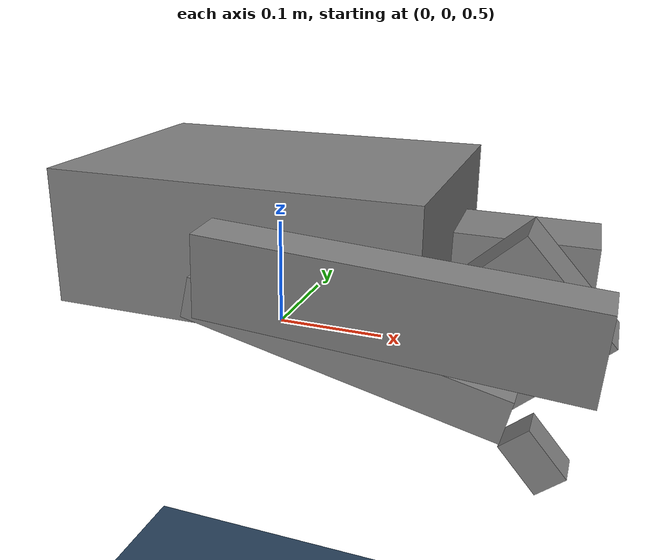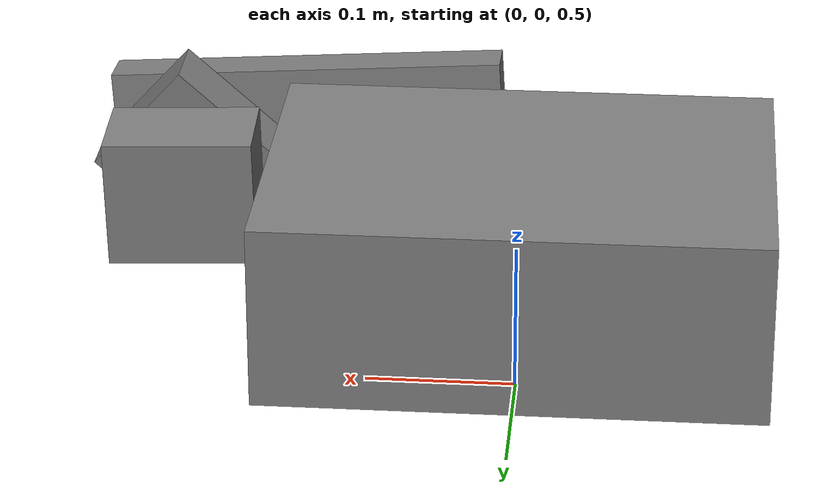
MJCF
<mujoco>

  <compiler angle="radian"/>

  <option timestep="0.0001" integrator="RK4">
    <flag gravity="disable" contact="disable"/>
  </option>

  <size memory="1M"/>

  <statistic meansize="0.193896" extent="1" center="0 0 0.3"/>

  <default>
    <joint actuatorfrcrange="-18 18"/>
    <default class="cartesian">
      <general biastype="affine" dynprm="0.189824" gainprm="51.073" biasprm="0 -51.073 -1.03446"/>
    </default>
  </default>

  <asset>
    <texture type="2d" name="groundplane" builtin="checker" mark="edge" rgb1="0.2 0.3 0.4" rgb2="0.1 0.2 0.3" markrgb="0.8 0.8 0.8" width="200" height="200"/>
    <material name="groundplane"  texture="groundplane" texuniform="true" texrepeat="2 2" reflectance="0.2"/>
  </asset>

  <worldbody>
    <geom size="0 0 0.1" type="plane" material="groundplane"/>
    <light pos="0 0 1.5" dir="0 0 -1"/>
    <body pos="0 0 0.6">
      <joint type="free"/>

      <body name="base">
        <geom size="0.0606401 0.116554 0.163268" pos="-0.00170944 -0.000675197 0.00191671" quat="-0.000920387 0.70756 -0.000583555 0.706653" type="box"/>
        <site name="base_frame"/>
        <body pos="0.171671 -0.0907507 -9.8e-06" quat="0.5 -0.5 0.5 -0.5">
          <joint axis="0 0 1" range="-1.0472 1.0472" armature="0.0109013" damping="0.0239" frictionloss="0.1334"/>
          <geom size="0.0324681 0.0432267 0.0500827" pos="-0.00997157 -1.75508e-05 0.0591165" quat="0.99973 -0.0108474 -0.0205183 -0.000825809" type="box"/>
          <body pos="0.03085 0 0.065" quat="0 -0.707107 0 -0.707107">
            <joint axis="0 0 1" range="-1.54706 3.02902" armature="0.0109013" damping="0.0239" frictionloss="0.1334"/>
            <geom size="0.0230114 0.044369 0.0456418" pos="0.00023322 7.40609e-05 0.0232897" quat="0.646671 -0.288993 -0.645777 -0.285081" type="box"/>
            <geom size="0.0165189 0.0320859 0.136968" pos="-0.0789385 0.0134066 0.0697267" quat="0.0465854 -0.70695 -0.00148786 0.705726" type="box"/>
            <body pos="-0.19 0 0.069575" quat="0 0 -1 0">
              <joint axis="0 0 1" range="0 2.44346" armature="0.0109013" damping="0.0239" frictionloss="0.1334"/>
              <geom size="0.0119255 0.0121628 0.0197376" pos="-0.211513 -0.0748022 1.73156e-06" quat="0.642033 0.296302 -0.642156 0.296031" type="box"/>
              <geom size="0.008597 0.0161382 0.11823" pos="-0.0783394 -0.0253533 -1.08631e-05" quat="0.702549 0.0808911 -0.702432 0.0804412" type="box"/>
              <site name="foot_front_right" pos="-0.21425 -0.0779806 0" quat="0.664463 0.664463 -0.241845 -0.241845"/>
            </body>
          </body>
        </body>
      </body>
    </body>
  </worldbody>

  <actuator>
    <general name="x linear" class="cartesian" site="foot_front_right" refsite="base_frame" ctrlrange="-5 5" gear="1 0 0 0 0 0"/>
    <general name="y rotational" class="cartesian" site="foot_front_right" refsite="base_frame" ctrlrange="-5 5" gear="0 0 0 0 .1 0"/>
  </actuator>

  <sensor>
    <subtreeangmom body="base"/>
    <subtreelinvel body="base"/>
  </sensor>
</mujoco>
